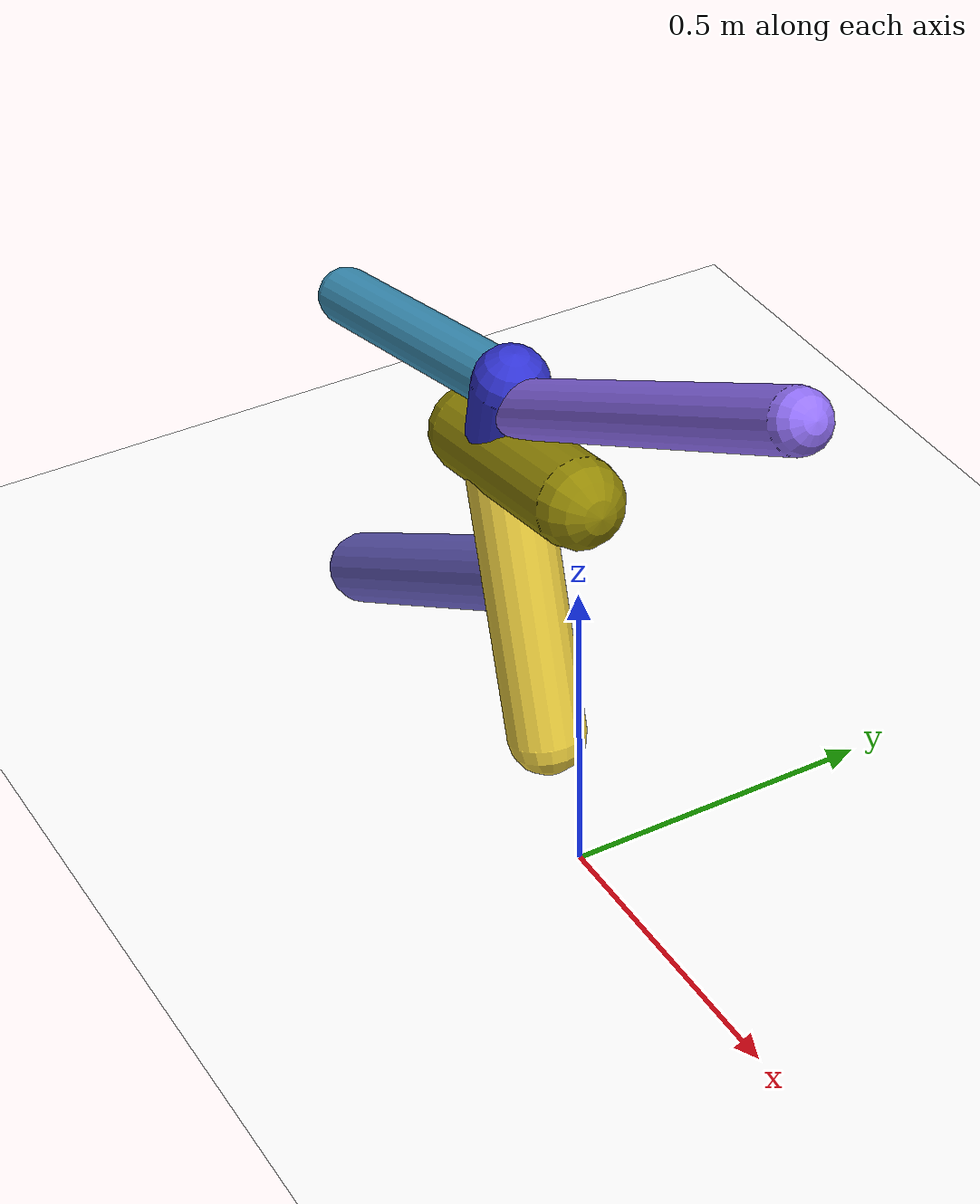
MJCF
<mujoco model="morphology">
  <option timestep="0.01"/>
  <default>
    <default class="/"/>
    <default class="0/"/>
    <default class="0/1/"/>
    <default class="0/1/2/"/>
    <default class="0/1/3/"/>
    <default class="0/1/4/"/>
    <default class="0/1/4/5/"/>
  </default>
  <asset>
    <texture name="texplane" type="2d" builtin="checker" rgb1="0.10000000000000001 0.20000000000000001 0.29999999999999999" rgb2="0.20000000000000001 0.29999999999999999 0.40000000000000002" width="300" height="300"/>
    <material name="MatPlane" class="/" texture="texplane" texrepeat="20 20" specular="1" shininess="1" reflectance="0.5"/>
  </asset>
  <worldbody>
    <light name="//unnamed_light_0" class="/" directional="true" pos="0 0 1.5" dir="0 0 -1.3" cutoff="100" exponent="1" diffuse="1 1 1" specular="0.10000000000000001 0.10000000000000001 0.10000000000000001"/>
    <geom name="ground" class="/" type="plane" size="15 15 0.5" material="MatPlane" rgba="1 1 1 1"/>
    <site name="body" class="/" size="9.9999999999999995e-07 9.9999999999999995e-07 9.9999999999999995e-07" pos="0 0 0.66252193450927732"/>
    <body pos="0 0 0.66252193450927732" name="0/">
      <joint name="0/rootx/" class="/" type="slide" axis="1 0 0" limited="false" stiffness="0" armature="0" damping="0"/>
      <joint name="0/rootz/" class="/" type="slide" axis="0 0 1" limited="false" stiffness="0" armature="0" damping="0"/>
      <joint name="0/rooty/" class="/" type="hinge" axis="0 1 0" limited="false" stiffness="0" armature="0" damping="0"/>
      <geom name="0/geom" class="0/" type="capsule" contype="1" conaffinity="1" condim="3" size="0.068310874189504905" rgba="0.57073003994426652 0.52632283864106177 0.018935976716886405 1" friction="0.59999999999999998 0.10000000000000001 0.10000000000000001" fromto="0 0 0 -0.30664330682025559 0 -0.053876968349454435"/>
      <site name="0/end0" class="0/" size="0.0050000000000000001" pos="-0.30664330682025559 0 -0.053876968349454435"/>
      <site name="0/attach1" class="0/" size="9.9999999999999995e-07 9.9999999999999995e-07 9.9999999999999995e-07" pos="-0.21885519266528067 0 -0.038452671315773186"/>
      <body pos="-0.21885519266528067 0 -0.038452671315773186" name="0/1/">
        <joint name="0/1/joint/" class="0/" type="hinge" axis="0 1 0" limited="true" range="-49.843484049907481 49.843484049907481"/>
        <geom name="0/1/geom" class="0/1/" type="capsule" contype="1" conaffinity="1" condim="3" size="0.058197729572642271" rgba="0.19047790916744867 0.19736253525838032 0.81738752993112418 1" friction="0.59999999999999998 0.10000000000000001 0.10000000000000001" fromto="0 0 0 0.030059354512681935 0 0.13118721762566743"/>
        <site name="0/1/end1" class="0/1/" size="0.0050000000000000001" pos="0.030059354512681935 0 0.13118721762566743"/>
        <site name="0/1/attach2" class="0/1/" size="9.9999999999999995e-07 9.9999999999999995e-07 9.9999999999999995e-07" pos="0.028493508187737118 0 0.12435343739554899"/>
        <body pos="0.028493508187737118 0 0.12435343739554899" name="0/1/2/">
          <joint name="0/1/2/joint/" class="0/1/" type="hinge" axis="0 1 0" limited="true" range="-69.141854032440676 69.141854032440676"/>
          <geom name="0/1/2/geom" class="0/1/2/" type="capsule" contype="1" conaffinity="1" condim="3" size="0.045598717720540222" rgba="0.24075619883648558 0.59206563336822027 0.75253789040336838 1" friction="0.59999999999999998 0.10000000000000001 0.10000000000000001" fromto="0 0 0 -0.52593630782312972 0 -0.12475550016997139"/>
          <site name="0/1/2/end2" class="0/1/2/" size="0.0050000000000000001" pos="-0.52593630782312972 0 -0.12475550016997139"/>
        </body>
        <site name="0/1/attach3" class="0/1/" size="9.9999999999999995e-07 9.9999999999999995e-07 9.9999999999999995e-07" pos="0.018952305423291623 0 0.082713027487816268"/>
        <body pos="0.018952305423291623 0 0.082713027487816268" name="0/1/3/">
          <joint name="0/1/3/joint/" class="0/1/" type="hinge" axis="0 1 0" limited="true" range="-35.16392834947667 35.16392834947667"/>
          <geom name="0/1/3/geom" class="0/1/3/" type="capsule" contype="1" conaffinity="1" condim="3" size="0.04410430050158537" rgba="0.57335613994977241 0.44141771513022243 0.9758272681166692 1" friction="0.59999999999999998 0.10000000000000001 0.10000000000000001" fromto="0 0 0 0.72794430239865182 0 0.3956886620211908"/>
          <site name="0/1/3/end3" class="0/1/3/" size="0.0050000000000000001" pos="0.72794430239865182 0 0.3956886620211908"/>
        </body>
        <site name="0/1/attach4" class="0/1/" size="9.9999999999999995e-07 9.9999999999999995e-07 9.9999999999999995e-07" pos="0.0011618996944271697 0 0.0050708470139538579"/>
        <body pos="0.0011618996944271697 0 0.0050708470139538579" name="0/1/4/">
          <joint name="0/1/4/joint/" class="0/1/" type="hinge" axis="0 1 0" limited="true" range="-35.394443663236437 35.394443663236437"/>
          <geom name="0/1/4/geom" class="0/1/4/" type="capsule" contype="1" conaffinity="1" condim="3" size="0.061743054575799122" rgba="0.97445956020153646 0.85079589970531977 0.26081431913496123 1" friction="0.59999999999999998 0.10000000000000001 0.10000000000000001" fromto="0 0 0 0.11888959855935322 0 -0.45699486872620243"/>
          <site name="0/1/4/end4" class="0/1/4/" size="0.0050000000000000001" pos="0.11888959855935322 0 -0.45699486872620243"/>
          <site name="0/1/4/attach5" class="0/1/4/" size="9.9999999999999995e-07 9.9999999999999995e-07 9.9999999999999995e-07" pos="0.051409370930506099 0 -0.19761037975037379"/>
          <body pos="0.051409370930506099 0 -0.19761037975037379" name="0/1/4/5/">
            <joint name="0/1/4/5/joint/" class="0/1/4/" type="hinge" axis="0 1 0" limited="true" range="-38.067623608468061 38.067623608468061"/>
            <geom name="0/1/4/5/geom" class="0/1/4/5/" type="capsule" contype="1" conaffinity="1" condim="3" size="0.057955672027475272" rgba="0.44423437177047853 0.41018495342776784 0.82537229336020412 1" friction="0.59999999999999998 0.10000000000000001 0.10000000000000001" fromto="0 0 0 -0.54456658417984971 0 -0.33152972446418649"/>
            <site name="0/1/4/5/end5" class="0/1/4/5/" size="0.0050000000000000001" pos="-0.54456658417984971 0 -0.33152972446418649"/>
          </body>
        </body>
      </body>
      <camera name="0/side" class="0/" mode="trackcom" pos="0.40000000000000002 -4 0.20000000000000001" quat="0.70699999999999996 0.70699999999999996 0 0"/>
    </body>
  </worldbody>
  <actuator>
    <motor name="0/1/motor" class="0/1/" ctrllimited="true" ctrlrange="-1 1" gear="84" joint="0/1/joint/"/>
    <motor name="0/1/2/motor" class="0/1/2/" ctrllimited="true" ctrlrange="-1 1" gear="70" joint="0/1/2/joint/"/>
    <motor name="0/1/3/motor" class="0/1/3/" ctrllimited="true" ctrlrange="-1 1" gear="59" joint="0/1/3/joint/"/>
    <motor name="0/1/4/motor" class="0/1/4/" ctrllimited="true" ctrlrange="-1 1" gear="53" joint="0/1/4/joint/"/>
    <motor name="0/1/4/5/motor" class="0/1/4/5/" ctrllimited="true" ctrlrange="-1 1" gear="69" joint="0/1/4/5/joint/"/>
  </actuator>
  <sensor>
    <subtreelinvel name="velocity" body="0/"/>
  </sensor>
</mujoco>
